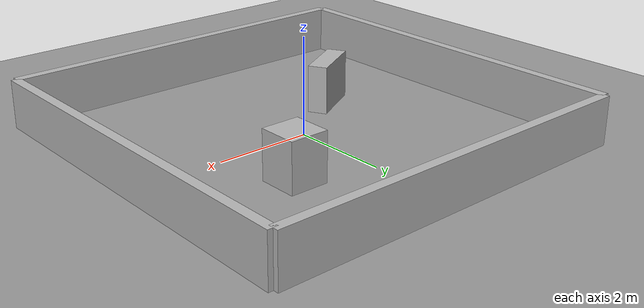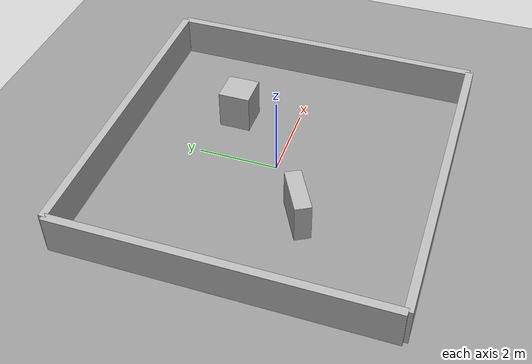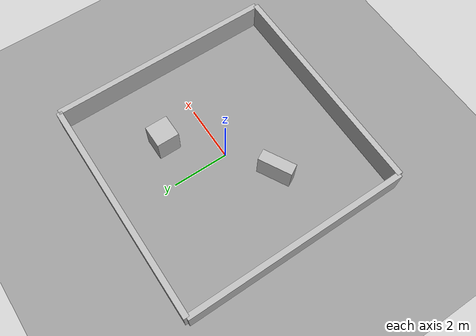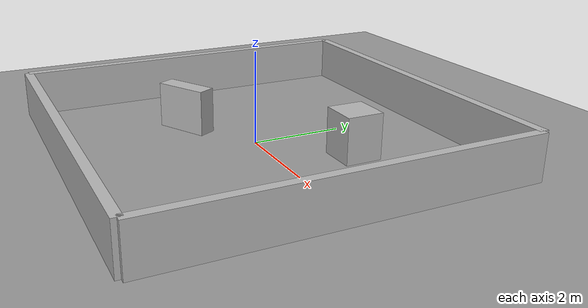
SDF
<?xml version="1.0"?>
<sdf version="1.9">
  <world name="agos_world">

    <physics name="1ms" type="ignored">
      <max_step_size>0.002</max_step_size>
      <real_time_factor>1.0</real_time_factor>
    </physics>

    <plugin filename="gz-sim-physics-system" name="gz::sim::systems::Physics"/>
    <plugin filename="gz-sim-user-commands-system" name="gz::sim::systems::UserCommands"/>
    <plugin filename="gz-sim-scene-broadcaster-system" name="gz::sim::systems::SceneBroadcaster"/>
    <!-- Needed for gpu_lidar and rgbd_camera. If it crashes on your GPU, change ogre2 to ogre -->
    <plugin filename="gz-sim-sensors-system" name="gz::sim::systems::Sensors">
      <render_engine>ogre2</render_engine>
    </plugin>
    <!-- Without this, /imu/data stays silent -->
    <plugin filename="gz-sim-imu-system" name="gz::sim::systems::Imu"/>

    <light type="directional" name="sun">
      <cast_shadows>false</cast_shadows>
      <pose>0 0 10 0 0 0</pose>
      <diffuse>0.9 0.9 0.9 1</diffuse>
      <direction>-0.5 0.1 -0.9</direction>
    </light>

    <model name="ground">
      <static>true</static>
      <link name="link">
        <collision name="collision">
          <geometry><plane><normal>0 0 1</normal><size>40 40</size></plane></geometry>
          <surface><friction><ode><mu>0.8</mu><mu2>0.8</mu2></ode></friction></surface>
        </collision>
        <visual name="visual">
          <geometry><plane><normal>0 0 1</normal><size>40 40</size></plane></geometry>
          <material><ambient>0.6 0.6 0.6 1</ambient><diffuse>0.6 0.6 0.6 1</diffuse></material>
        </visual>
      </link>
    </model>

    <!-- Room walls (8 m x 8 m) -->
    <model name="walls">
      <static>true</static>
      <link name="link">
        <collision name="n"><pose>0 4 0.5 0 0 0</pose><geometry><box><size>8 0.2 1</size></box></geometry></collision>
        <visual name="n"><pose>0 4 0.5 0 0 0</pose><geometry><box><size>8 0.2 1</size></box></geometry></visual>
        <collision name="s"><pose>0 -4 0.5 0 0 0</pose><geometry><box><size>8 0.2 1</size></box></geometry></collision>
        <visual name="s"><pose>0 -4 0.5 0 0 0</pose><geometry><box><size>8 0.2 1</size></box></geometry></visual>
        <collision name="e"><pose>4 0 0.5 0 0 0</pose><geometry><box><size>0.2 8 1</size></box></geometry></collision>
        <visual name="e"><pose>4 0 0.5 0 0 0</pose><geometry><box><size>0.2 8 1</size></box></geometry></visual>
        <collision name="w"><pose>-4 0 0.5 0 0 0</pose><geometry><box><size>0.2 8 1</size></box></geometry></collision>
        <visual name="w"><pose>-4 0 0.5 0 0 0</pose><geometry><box><size>0.2 8 1</size></box></geometry></visual>
        <!-- obstacles for scan matching -->
        <collision name="b1"><pose>1.5 1.5 0.5 0 0 0</pose><geometry><box><size>0.8 0.8 1</size></box></geometry></collision>
        <visual name="b1"><pose>1.5 1.5 0.5 0 0 0</pose><geometry><box><size>0.8 0.8 1</size></box></geometry></visual>
        <collision name="b2"><pose>-1.5 -1 0.5 0 0 0.5</pose><geometry><box><size>1.2 0.4 1</size></box></geometry></collision>
        <visual name="b2"><pose>-1.5 -1 0.5 0 0 0.5</pose><geometry><box><size>1.2 0.4 1</size></box></geometry></visual>
      </link>
    </model>

    <model name="drift_scene_view">
      <static>true</static>
      <pose>3 0 2 0 0.34 3.14159</pose>
      <link name="link">
        <sensor type="camera" name="drift_scene_view_camera">
          <topic>/drift/scene_view</topic>
          <always_on>1</always_on>
          <update_rate>30</update_rate>
          <camera>
            <horizontal_fov>1.0472</horizontal_fov>
            <image>
              <width>800</width>
              <height>600</height>
              <format>R8G8B8</format>
            </image>
            <clip>
              <near>0.05</near>
              <far>100</far>
            </clip>
          </camera>
        </sensor>
      </link>
    </model>
</world>
</sdf>
